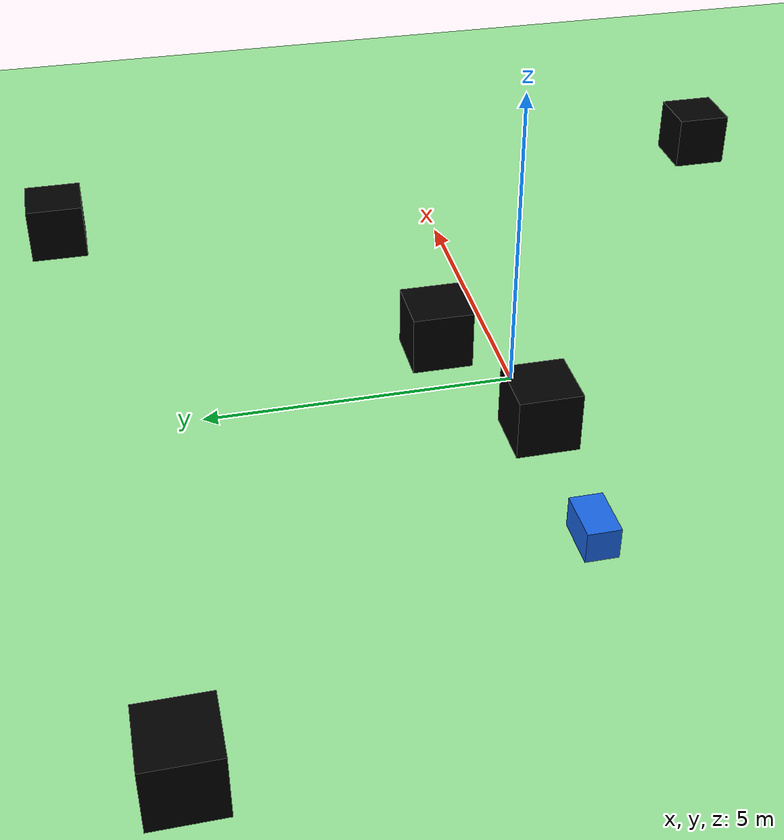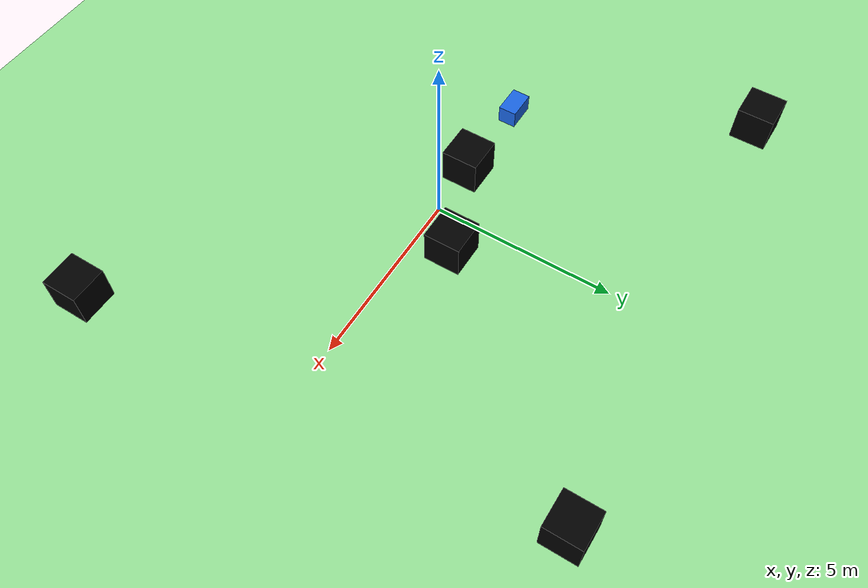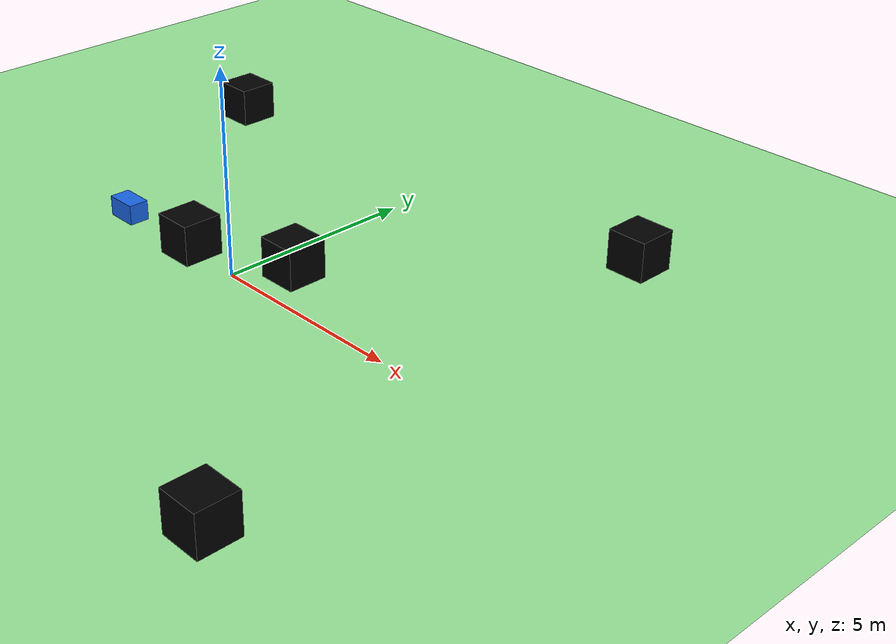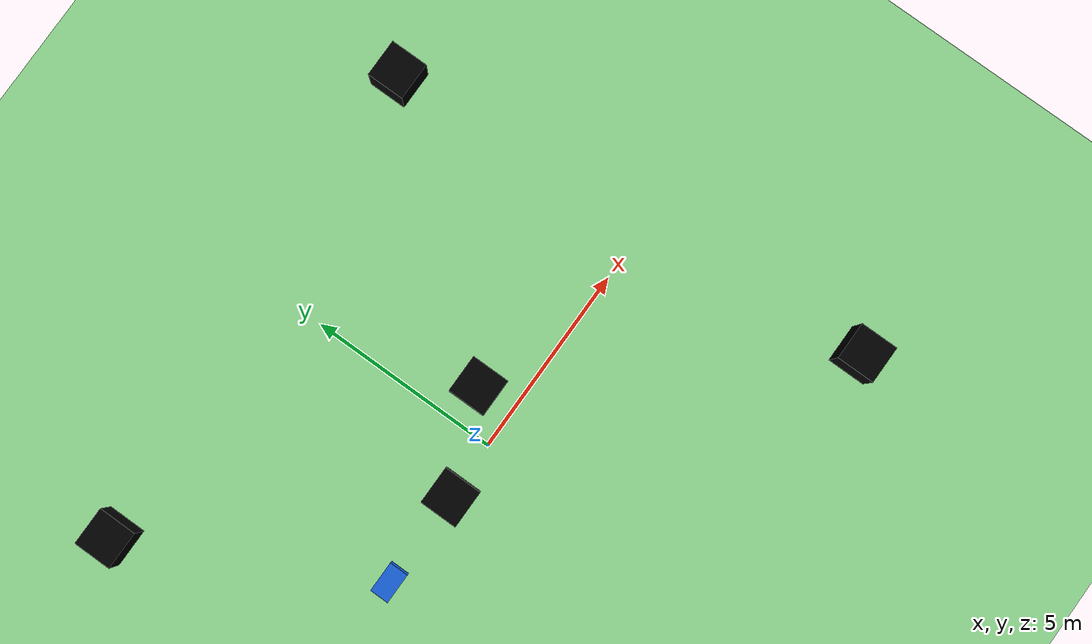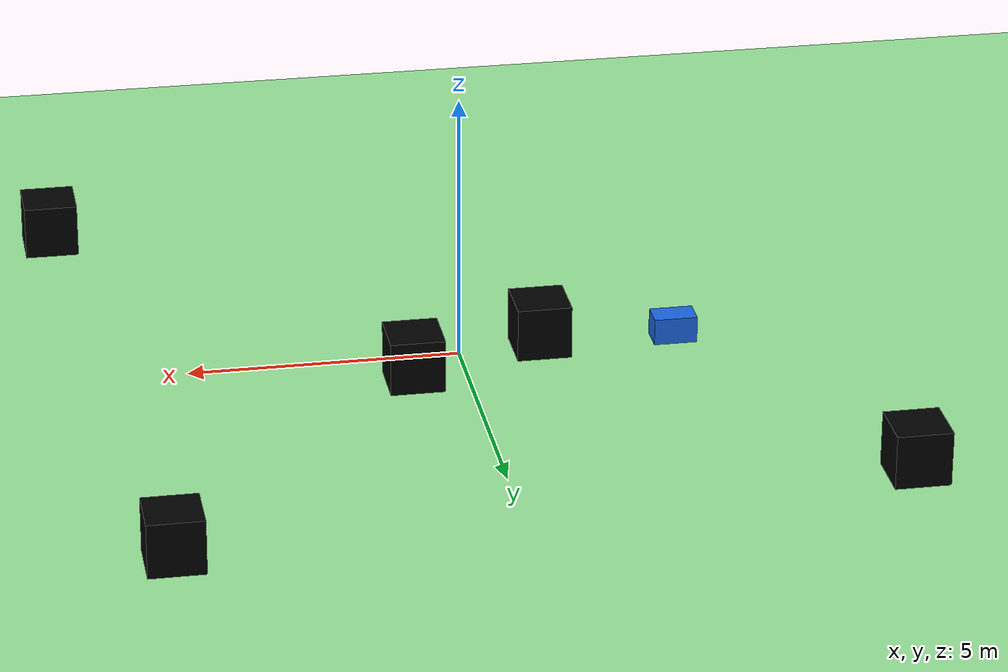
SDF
<?xml version="1.0" ?>
<sdf version="1.8">
    <world name="rover_map">

        <model name="ground">
            <static>true</static>

            <link name="ground_link">

                <collision name="ground_collision">
                    <geometry>
                        <plane>
                            <normal>0 0 1</normal>
                            <size>20 20</size>
                        </plane>
                    </geometry>
                </collision>

                <visual name="ground_visual">
                    <geometry>
                        <plane>
                            <normal>0 0 1</normal>
                            <size>20 20</size>
                        </plane>
                    </geometry>

                    <material>
                        <ambient>0.6 0.9 0.6 1</ambient>
                        <diffuse>0.6 0.9 0.6 1</diffuse>
                    </material>
                </visual>

            </link>
        </model>
        <model name="obstacle_1">
            <static>true</static>
            <pose>-1.5 0 0.5 0 0 0</pose>
            <link name="obstacle_link">
                <collision name="obstacle_collision">
                    <geometry><box><size>1 1 1</size></box></geometry>
                </collision>
                <visual name="obstacle_visual">
                    <geometry><box><size>1 1 1</size></box></geometry>
                    <material>
                        <ambient>0 0 0 1</ambient>
                        <diffuse>0 0 0 1</diffuse>
                    </material>
                </visual>
            </link>
        </model>

        <model name="obstacle_2">
            <static>true</static>
            <pose>7 -6 0.5 0 0 0</pose>
            <link name="obstacle_link">
                <collision name="obstacle_collision">
                    <geometry><box><size>1 1 1</size></box></geometry>
                </collision>
                <visual name="obstacle_visual">
                    <geometry><box><size>1 1 1</size></box></geometry>
                    <material>
                        <ambient>0 0 0 1</ambient>
                        <diffuse>0 0 0 1</diffuse>
                    </material>
                </visual>
            </link>
        </model>

        <model name="obstacle_3">
            <static>true</static>
            <pose>-7 6 0.5 0 0 0</pose>
            <link name="obstacle_link">
                <collision name="obstacle_collision">
                    <geometry><box><size>1 1 1</size></box></geometry>
                </collision>
                <visual name="obstacle_visual">
                    <geometry><box><size>1 1 1</size></box></geometry>
                    <material>
                        <ambient>0 0 0 1</ambient>
                        <diffuse>0 0 0 1</diffuse>
                    </material>
                </visual>
            </link>
        </model>

        <model name="obstacle_4">
            <static>true</static>
            <pose>6 7 0.5 0 0 0</pose>
            <link name="obstacle_link">
                <collision name="obstacle_collision">
                    <geometry><box><size>1 1 1</size></box></geometry>
                </collision>
                <visual name="obstacle_visual">
                    <geometry><box><size>1 1 1</size></box></geometry>
                    <material>
                        <ambient>0 0 0 1</ambient>
                        <diffuse>0 0 0 1</diffuse>
                    </material>
                </visual>
            </link>
        </model>

        <model name="obstacle_5">
            <static>true</static>
            <pose>1 1 0.5 0 0 0</pose>
            <link name="obstacle_link">
                <collision name="obstacle_collision">
                    <geometry><box><size>1 1 1</size></box></geometry>
                </collision>
                <visual name="obstacle_visual">
                    <geometry><box><size>1 1 1</size></box></geometry>
                    <material>
                        <ambient>0 0 0 1</ambient>
                        <diffuse>0 0 0 1</diffuse>
                    </material>
                </visual>
            </link>
        </model>

        <model name="rover">
            <pose>-4 0 0.25 0 0 0</pose>

            <link name="base_link">

                <collision name="rover_collision">
                    <geometry>
                        <box>
                            <size>0.8 0.5 0.5</size>
                        </box>
                    </geometry>
                </collision>

                <visual name="rover_visual">
                    <geometry>
                        <box>
                            <size>0.8 0.5 0.5</size>
                        </box>
                    </geometry>

                    <material>
                        <ambient>0.1 0.4 0.9 1</ambient>
                        <diffuse>0.1 0.4 0.9 1</diffuse>
                    </material>
                </visual>

                <sensor name="front_lidar" type="gpu_lidar">
                    <pose>0.4 0 0.2 0 0 0</pose>
                    <topic>/rover/scan</topic>
                    <update_rate>10</update_rate>
                    <always_on>true</always_on>
                    <visualize>false</visualize>
                    <ray>
                        <scan>
                            <horizontal>
                                <samples>181</samples>
                                <resolution>1</resolution>
                                <min_angle>-1.5708</min_angle>
                                <max_angle>1.5708</max_angle>
                            </horizontal>
                        </scan>
                        <range>
                            <min>0.1</min>
                            <max>10.0</max>
                            <resolution>0.01</resolution>
                        </range>
                    </ray>
                </sensor>

            </link>

            <plugin
                filename="gz-sim-velocity-control-system"
                name="gz::sim::systems::VelocityControl">
            </plugin>
            <plugin
            filename="gz-sim-pose-publisher-system"
            name="gz::sim::systems::PosePublisher">

            <publish_model_pose>true</publish_model_pose>
            <update_frequency>10</update_frequency>
            <topic>/rover/pose</topic>

            </plugin>
        </model>

        <plugin
            filename="gz-sim-user-commands-system"
            name="gz::sim::systems::UserCommands">
        </plugin>

        <plugin
            filename="gz-sim-physics-system"
            name="gz::sim::systems::Physics">
        </plugin>

        <plugin
            filename="gz-sim-scene-broadcaster-system"
            name="gz::sim::systems::SceneBroadcaster">
        </plugin>

        <plugin
            filename="gz-sim-sensors-system"
            name="gz::sim::systems::Sensors">
            <render_engine>ogre2</render_engine>
        </plugin>

    </world>
</sdf>
